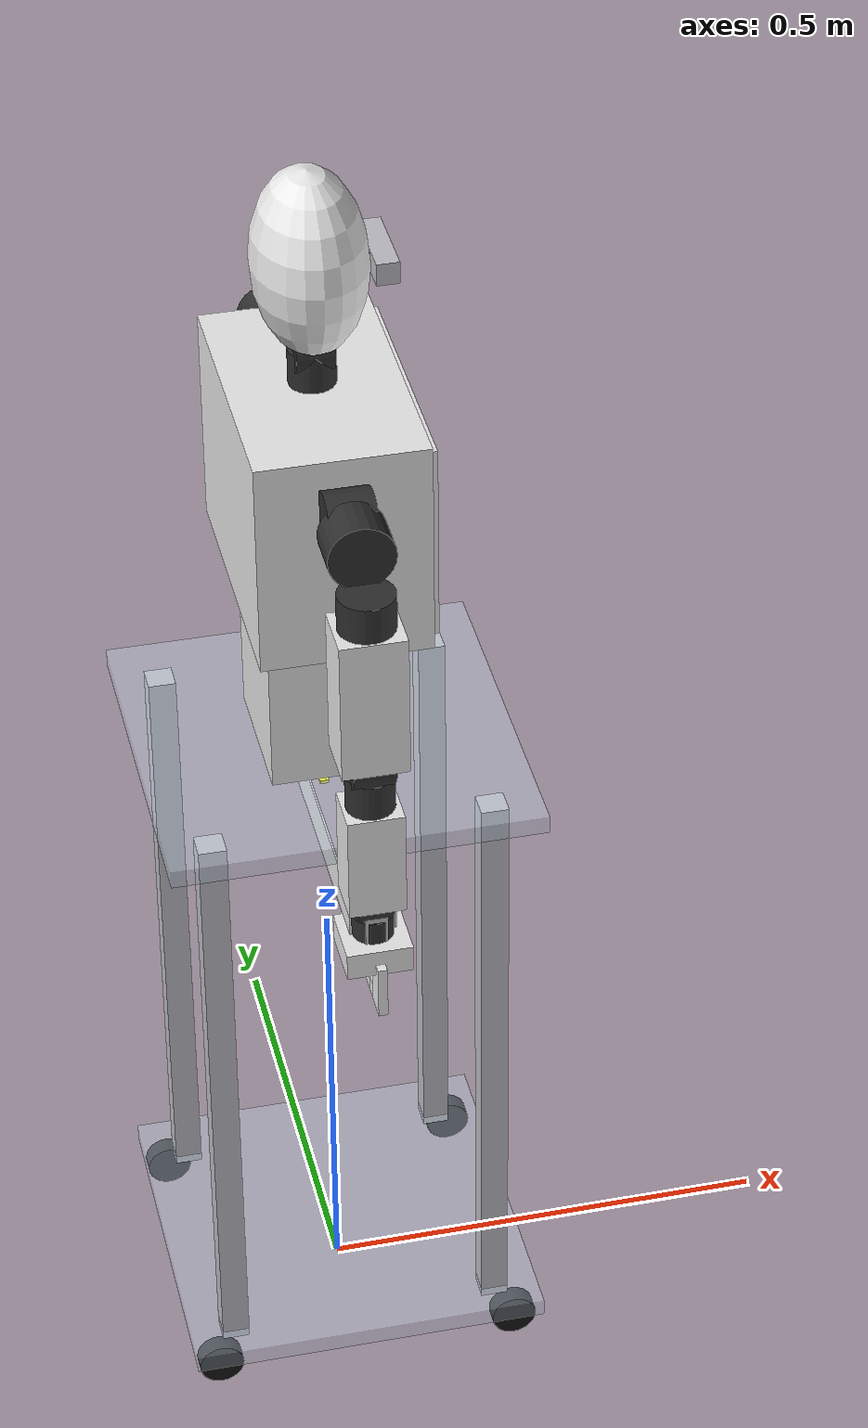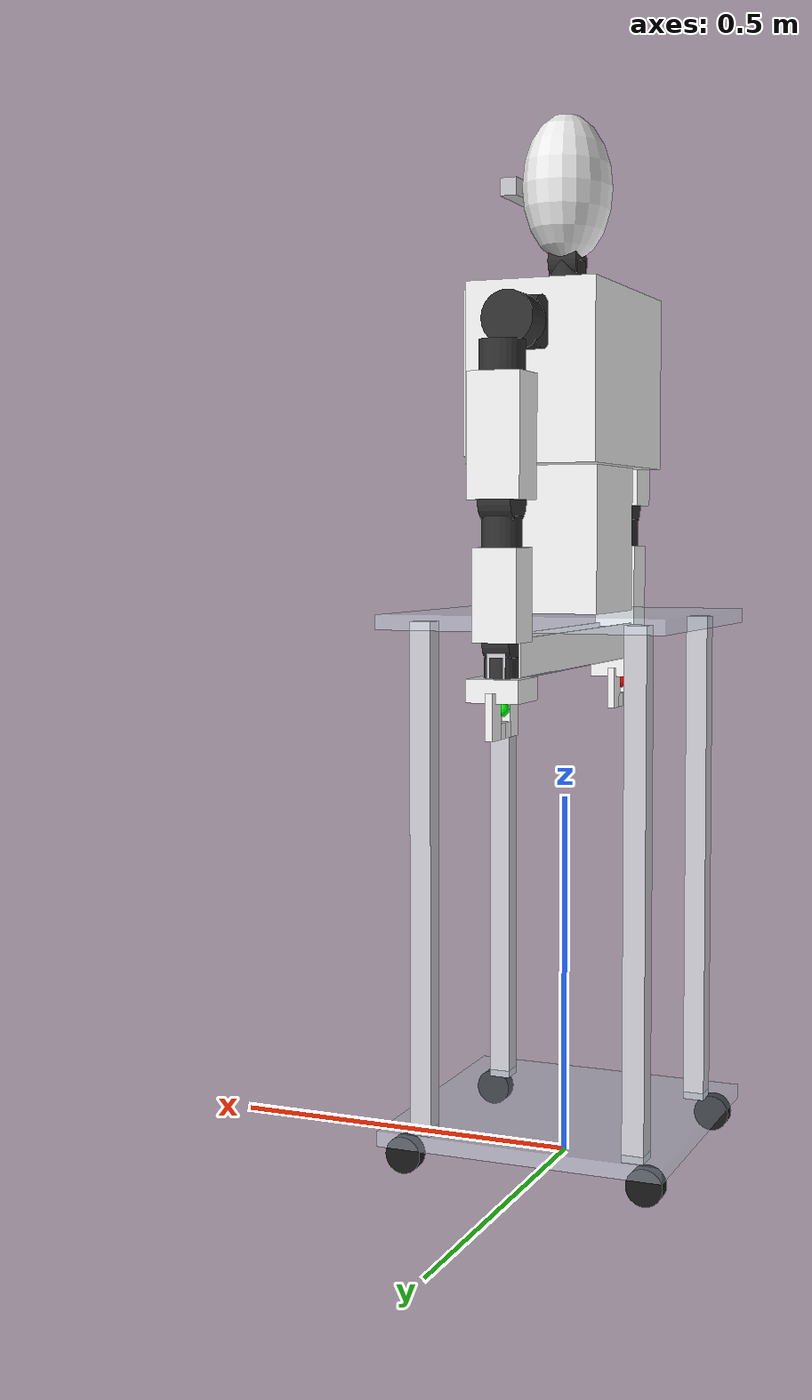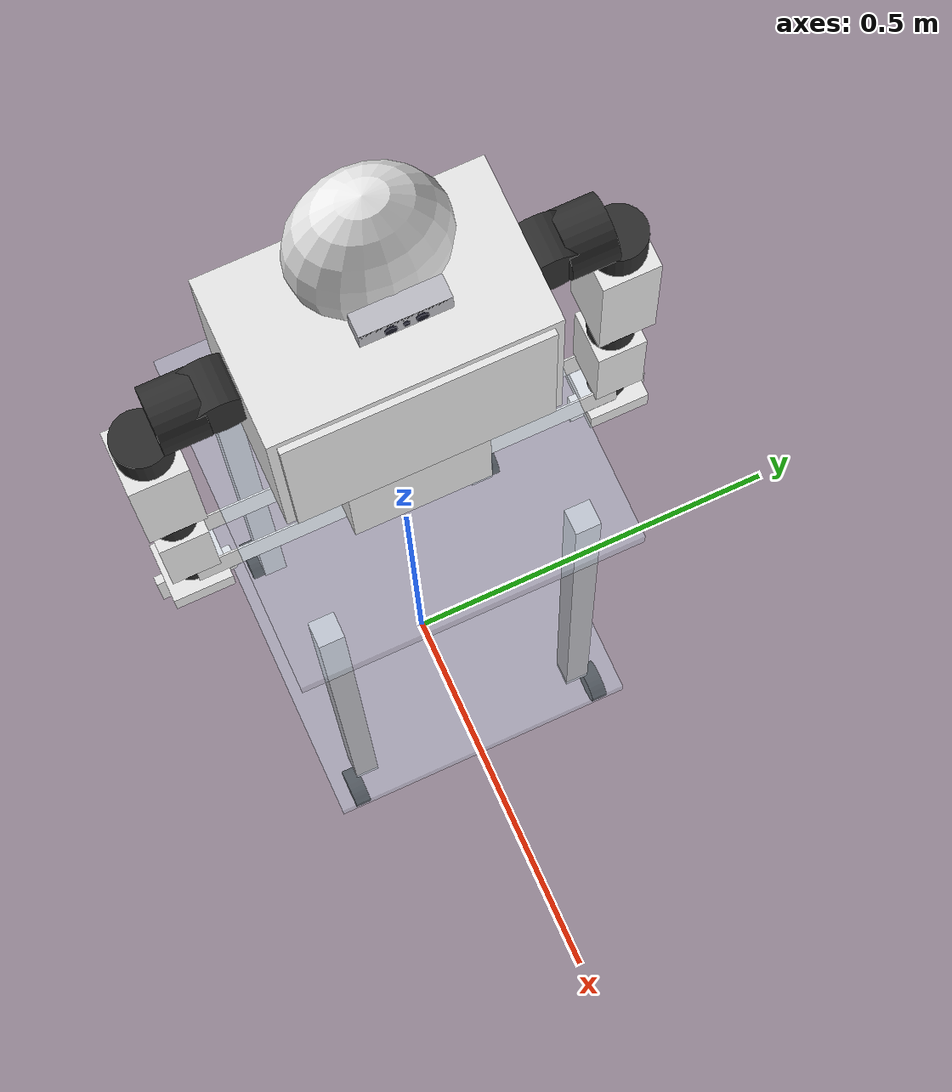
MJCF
<mujoco model="custom_humanoid_plate_scene">
  <include file="my_bot.xml"/>

  <statistic center="0 0 0.8" extent="1.5"/>

  <visual>
    <headlight diffuse="0.6 0.6 0.6" ambient="0.3 0.3 0.3" specular="0 0 0"/>
    <rgba haze="0.15 0.25 0.35 1"/>
    <global azimuth="140" elevation="-30"/>
  </visual>

  <asset>
    <!-- Floor Texture & Skybox -->
    <texture type="skybox" builtin="gradient" rgb1="0.3 0.5 0.7" rgb2="0.05 0.1 0.15" width="512" height="3072"/>
    <texture type="2d" name="groundplane" builtin="checker" mark="edge" rgb1="0.2 0.3 0.4" rgb2="0.1 0.2 0.3"
      markrgb="0.8 0.8 0.8" width="300" height="300"/>
    <material name="groundplane" texture="groundplane" texuniform="true" texrepeat="5 5" reflectance="0.2"/>
    <material name="ball_color" rgba="0.8 0.15 0.15 1" shininess="0.8" specular="0.8"/>
  </asset>

  <default>
    <default class="free_joint_class">
      <joint damping="0.0" armature="0.0" frictionloss="0.0"/>
    </default>
  </default>

  <worldbody>
    <!-- Soft environment lights -->
    <light pos="1.5 -1.0 3.0" dir="-1.5 1.0 -3.0" directional="true" castshadow="true"/>
    <light pos="-1.5 1.0 3.0" dir="1.5 -1.0 -3.0" directional="true" castshadow="false" diffuse="0.3 0.3 0.3"/>

    <!-- Floor Plane -->
    <geom name="floor" size="0 0 0.05" type="plane" material="groundplane" class="collision"/>

    <!-- PLATE ASSEMBLY (Aligned along Y-axis to bridge left & right arms)     -->
    <!-- Initial position aligns with robot wrists at 0.0 joint configuration:  -->
    <body name="plate_assembly" pos="0.0 0.0 0.695">
      <!-- Free Joint so plate can be moved by welded arms -->
      <joint name="plate_joint" type="free" class="free_joint_class"/>

      <!-- Center Marker visual -->
      <geom name="plate_center_marker" type="box" size="0.005 0.005 0.002" pos="0 0 0.001" rgba="1 1 0 1" contype="0" conaffinity="0" group="2"/>

      <!-- U-Channel Plate Bottom (Width: 5cm, Length: 50cm, Thickness: 2mm) -->
      <geom name="plate_bottom" type="box" size="0.025 0.25 0.001" pos="0 0 -0.01" material="acrylic_glass" friction="0.05 0.005 0.0001" contype="1" conaffinity="1" group="3"/>
      <geom name="plate_bottom_vis" type="box" size="0.025 0.25 0.001" pos="0 0 -0.01" material="acrylic_glass" contype="0" conaffinity="0" group="2"/>

      <!-- U-Channel Side Walls to keep the ball from rolling off sideways -->
      <geom name="plate_left_wall" type="box" size="0.001 0.25 0.025" pos="0.024 0 0.015" material="white_plastic" friction="0.05 0.005 0.0001" contype="1" conaffinity="1" group="3"/>
      <geom name="plate_left_wall_vis" type="box" size="0.001 0.25 0.025" pos="0.024 0 0.015" material="white_plastic" contype="0" conaffinity="0" group="2"/>

      <geom name="plate_right_wall" type="box" size="0.001 0.25 0.025" pos="-0.024 0 0.015" material="white_plastic" friction="0.05 0.005 0.0001" contype="1" conaffinity="1" group="3"/>
      <geom name="plate_right_wall_vis" type="box" size="0.001 0.25 0.025" pos="-0.024 0 0.015" material="white_plastic" contype="0" conaffinity="0" group="2"/>

      <!-- Plate End Caps to prevent the ball from falling off the ends -->
      <geom name="plate_front_cap" type="box" size="0.025 0.001 0.025" pos="0 0.25 0.015" material="white_plastic" friction="0.05 0.005 0.0001" contype="1" conaffinity="1" group="3"/>
      <geom name="plate_back_cap" type="box" size="0.025 0.001 0.025" pos="0 -0.25 0.015" material="white_plastic" friction="0.05 0.005 0.0001" contype="1" conaffinity="1" group="3"/>

      <!-- Left Coupler (Grasp Handle for the left gripper) -->
      <geom name="left_coupler" type="box" size="0.012 0.02 0.02" pos="0 0.25 0.01" material="metal_silver" contype="1" conaffinity="1" friction="1.0 0.005 0.0001" group="3"/>
      <geom name="left_coupler_vis" type="box" size="0.012 0.02 0.02" pos="0 0.25 0.01" material="metal_silver" contype="0" conaffinity="0" group="2"/>

      <!-- Right Coupler (Grasp Handle for the right gripper) -->
      <geom name="right_coupler" type="box" size="0.012 0.02 0.02" pos="0 -0.25 0.01" material="metal_silver" contype="1" conaffinity="1" friction="1.0 0.005 0.0001" group="3"/>
      <geom name="right_coupler_vis" type="box" size="0.012 0.02 0.02" pos="0 -0.25 0.01" material="metal_silver" contype="0" conaffinity="0" group="2"/>
    </body>

    <!-- BALL (Starts resting on the plate, offset by 5cm along Y channel)       -->
    <body name="ball" pos="0.0 0.05 0.715">
      <joint name="ball_joint" type="free" class="free_joint_class"/>
      <!-- Small red sphere (Diameter 3cm) -->
      <geom name="ball_collision" type="sphere" size="0.015" material="ball_color" density="2700" friction="0.02 0.005 0.0001" contype="1" conaffinity="1" group="3"/>
      <geom name="ball_vis" type="sphere" size="0.015" material="ball_color" contype="0" conaffinity="0" group="2"/>
    </body>
  </worldbody>

  <contact>
    <!-- Exclude collisions between arm wrist/gripper bodies and the plate assembly -->
    <!-- since we hold the plate via rigid weld equality constraints.             -->
    <exclude body1="l_wrist_yaw_link" body2="plate_assembly"/>
    <exclude body1="r_wrist_yaw_link" body2="plate_assembly"/>
    <exclude body1="l_gripper_l_finger" body2="plate_assembly"/>
    <exclude body1="l_gripper_r_finger" body2="plate_assembly"/>
    <exclude body1="r_gripper_l_finger" body2="plate_assembly"/>
    <exclude body1="r_gripper_r_finger" body2="plate_assembly"/>
  </contact>

  <equality>
    <!-- Weld constraints to dynamically and rigidly bind robot wrists to the plate. -->
    <!-- Stiffer solref="0.005 1" ensures the plate rigidly follows hand tilts without sagging. -->
    <weld name="left_hand_weld" body1="l_wrist_yaw_link" body2="plate_assembly" relpose="0 0.25 -0.07 0 1 0 0" solref="0.005 1" solimp="0.99 0.999 0.001 0.5 2"/>
    <weld name="right_hand_weld" body1="r_wrist_yaw_link" body2="plate_assembly" relpose="0 -0.25 -0.07 0 1 0 0" solref="0.005 1" solimp="0.99 0.999 0.001 0.5 2"/>
  </equality>
</mujoco>

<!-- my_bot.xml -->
<mujoco model="custom_humanoid">
  <compiler angle="radian" autolimits="true"/>

  <asset>
    <!-- Visual Materials -->
    <material name="white_plastic" rgba="0.92 0.92 0.92 1" shininess="0.3" specular="0.2"/>
    <material name="metal_silver" rgba="0.75 0.75 0.78 1" shininess="0.8" specular="0.7"/>
    <material name="motor_black" rgba="0.18 0.18 0.18 1" shininess="0.4" specular="0.3"/>
    <material name="acrylic_glass" rgba="0.85 0.92 1.0 0.35" shininess="0.9" specular="0.9"/>
    <material name="wheel_rubber" rgba="0.08 0.08 0.08 1" shininess="0.1" specular="0.1"/>
    <material name="face_screen" rgba="0.1 0.1 0.15 1" shininess="0.9" specular="0.9"/>
  </asset>

  <default>
    <!-- Actuator and Joint defaults for Dynamixel XM430/XH430 type servos -->
    <joint damping="1.5" armature="0.06" frictionloss="0.05"/>
    <position kp="45.0" forcerange="-10 10"/>

    <!-- Hierarchical Defaults to avoid duplicate classes -->
    <default class="visual">
      <geom contype="0" conaffinity="0" group="2"/>
      <default class="stand_part">
        <geom material="metal_silver"/>
      </default>
      <default class="white_shell_visual">
        <geom material="white_plastic"/>
      </default>
      <default class="motor_block">
        <geom material="motor_black" type="cylinder"/>
      </default>
    </default>

    <default class="collision">
      <geom group="3" condim="3" friction="1.0 0.005 0.0001"/>
      <default class="white_shell_collision">
        <geom material="white_plastic"/>
      </default>
    </default>
  </default>

  <worldbody>
    <!-- Base Mobile Stand (Fixed to world for stability, wheel spin is cosmetic/passive) -->
    <body name="stand_base" pos="0 0 0.05">
      <!-- Acrylic Bottom Plate -->
      <geom name="base_plate" type="box" size="0.2 0.2 0.01" material="acrylic_glass" class="collision"/>
      <geom type="box" size="0.2 0.2 0.01" material="acrylic_glass" class="visual"/>

      <!-- Cosmetic Caster Wheels -->
      <body name="wheel_fl" pos="0.17 0.17 -0.025">
        <geom type="cylinder" size="0.025 0.01" quat="0.7071 0.7071 0 0" material="wheel_rubber" class="visual"/>
      </body>
      <body name="wheel_fr" pos="0.17 -0.17 -0.025">
        <geom type="cylinder" size="0.025 0.01" quat="0.7071 0.7071 0 0" material="wheel_rubber" class="visual"/>
      </body>
      <body name="wheel_bl" pos="-0.17 0.17 -0.025">
        <geom type="cylinder" size="0.025 0.01" quat="0.7071 0.7071 0 0" material="wheel_rubber" class="visual"/>
      </body>
      <body name="wheel_br" pos="-0.17 -0.17 -0.025">
        <geom type="cylinder" size="0.025 0.01" quat="0.7071 0.7071 0 0" material="wheel_rubber" class="visual"/>
      </body>

      <!-- Aluminum Profile Extrusions (Vertical Frame) -->
      <geom class="stand_part" type="box" size="0.015 0.015 0.35" pos="0.15 0.15 0.35"/>
      <geom class="stand_part" type="box" size="0.015 0.015 0.35" pos="0.15 -0.15 0.35"/>
      <geom class="stand_part" type="box" size="0.015 0.015 0.35" pos="-0.15 0.15 0.35"/>
      <geom class="stand_part" type="box" size="0.015 0.015 0.35" pos="-0.15 -0.15 0.35"/>

      <!-- Acrylic Top Plate -->
      <geom type="box" size="0.2 0.2 0.01" pos="0 0 0.7" material="acrylic_glass" class="collision"/>
      <geom type="box" size="0.2 0.2 0.01" pos="0 0 0.7" material="acrylic_glass" class="visual"/>

      <!-- ==================== ROBOT BODY START ==================== -->
      <body name="torso" pos="0 0 0.71">
        <!-- Lower Trapezoidal Torso Section -->
        <geom class="white_shell_collision" type="box" size="0.07 0.08 0.1" pos="0 0 0.1"/>
        <geom class="white_shell_visual" type="box" size="0.07 0.08 0.1" pos="0 0 0.1"/>

        <!-- Upper Chest Section -->
        <geom class="white_shell_collision" type="box" size="0.09 0.15 0.12" pos="0 0 0.32"/>
        <geom class="white_shell_visual" type="box" size="0.09 0.15 0.12" pos="0 0 0.32"/>
        <!-- Chest Front Cover plate detail -->
        <geom class="white_shell_visual" type="box" size="0.005 0.14 0.11" pos="0.092 0 0.32"/>

        <!-- ==================== HEAD (2 DOF) ==================== -->
        <body name="head_yaw_link" pos="0 0 0.44">
          <joint name="head_yaw" type="hinge" axis="0 0 1" range="-1.57 1.57"/>
          <geom class="motor_block" size="0.025 0.02" pos="0 0 0.02"/>

          <body name="head_tilt_link" pos="0 0 0.04">
            <joint name="head_tilt" type="hinge" axis="0 1 0" range="-0.8 0.8"/>
            <geom class="motor_block" size="0.025 0.02" quat="0.7071 0 0.7071 0" pos="0 0 0"/>

            <!-- Oval Head Shell -->
            <geom class="white_shell_collision" type="ellipsoid" size="0.06 0.08 0.1" pos="0 0 0.1"/>
            <geom class="white_shell_visual" type="ellipsoid" size="0.06 0.08 0.1" pos="0 0 0.1"/>

            <!-- RealSense-Style Depth Camera Assembly -->
            <!-- Camera Mount Bracket -->
            <geom type="box" size="0.005 0.015 0.008" pos="0.055 0 0.1" material="motor_black" class="visual"/>
            <!-- Camera Outer Casing (Silver Bezel) -->
            <geom type="box" size="0.012 0.045 0.012" pos="0.07 0 0.1" material="metal_silver" class="visual"/>
            <geom type="box" size="0.011 0.044 0.011" pos="0.071 0 0.1" material="motor_black" class="visual"/>
            <!-- Left Depth Sensor Lens -->
            <geom type="cylinder" size="0.006 0.002" pos="0.082 0.015 0.1" quat="0.7071 0 0.7071 0" material="face_screen" class="visual"/>
            <!-- Right Depth Sensor Lens -->
            <geom type="cylinder" size="0.006 0.002" pos="0.082 -0.015 0.1" quat="0.7071 0 0.7071 0" material="face_screen" class="visual"/>
            <!-- Central RGB Camera Lens -->
            <geom type="cylinder" size="0.003 0.002" pos="0.082 0 0.1" quat="0.7071 0 0.7071 0" material="face_screen" class="visual"/>

            <!-- Depth Camera Sensor (points forward along +X with +Z pointing up) -->
            <camera name="head_camera" pos="0.082 0 0.1" xyaxes="0 -1 0 0 0 1" fovy="60"/>
          </body>
        </body>

        <!-- ==================== LEFT ARM (7 DOF + Gripper) ==================== -->
        <!-- Shoulder Pitch (J1) -->
        <body name="l_sho_pitch_link" pos="0 0.17 0.38">
          <joint name="l_sho_pitch" type="hinge" axis="0 1 0" range="-2.5 2.5"/>
          <geom class="motor_block" size="0.035 0.025" quat="0.7071 0 0.7071 0" pos="0 0 0"/>

          <!-- Shoulder Roll (J2) -->
          <body name="l_sho_roll_link" pos="0 0.04 0">
            <joint name="l_sho_roll" type="hinge" axis="1 0 0" range="-0.2 2.0"/>
            <geom class="motor_block" size="0.035 0.025" quat="0.7071 0.7071 0 0" pos="0 0 0"/>

            <!-- Shoulder Yaw (J3) -->
            <body name="l_sho_yaw_link" pos="0 0.04 -0.05">
              <joint name="l_sho_yaw" type="hinge" axis="0 0 1" range="-1.57 1.57"/>
              <geom class="motor_block" size="0.03 0.02" pos="0 0 0"/>

              <!-- Upper Arm Link (Boxy, matching photos) -->
              <geom class="white_shell_collision" type="box" size="0.035 0.032 0.08" pos="0 0 -0.1"/>
              <geom class="white_shell_visual" type="box" size="0.035 0.032 0.08" pos="0 0 -0.1"/>

              <!-- Elbow Pitch (J4) -->
              <body name="l_el_pitch_link" pos="0 0 -0.18">
                <joint name="l_el_pitch" type="hinge" axis="0 1 0" range="-2.0 0.1"/>
                <geom class="motor_block" size="0.03 0.022" quat="0.7071 0 0.7071 0" pos="0 0 0"/>

                <!-- Forearm Yaw (J5) -->
                <body name="l_forearm_yaw_link" pos="0 0 -0.04">
                  <joint name="l_forearm_yaw" type="hinge" axis="0 0 1" range="-3.14 3.14"/>
                  <geom class="motor_block" size="0.026 0.02" pos="0 0 0"/>

                  <!-- Forearm Link (Boxy, matching photos) -->
                  <geom class="white_shell_collision" type="box" size="0.03 0.028 0.06" pos="0 0 -0.08"/>
                  <geom class="white_shell_visual" type="box" size="0.03 0.028 0.06" pos="0 0 -0.08"/>

                  <!-- Wrist Pitch (J6) -->
                  <body name="l_wrist_pitch_link" pos="0 0 -0.14">
                    <joint name="l_wrist_pitch" type="hinge" axis="0 1 0" range="-3.14 3.14"/>
                    <geom class="motor_block" size="0.024 0.018" quat="0.7071 0 0.7071 0" pos="0 0 0"/>

                    <!-- Wrist Yaw (J7 - Pitch rotated by 90 degrees) -->
                    <body name="l_wrist_yaw_link" pos="0 0 -0.035">
                      <joint name="l_wrist_yaw" type="hinge" axis="1 0 0" range="-3.14 3.14"/>
                      <geom class="motor_block" size="0.022 0.016" pos="0 0 0"/>

                      <!-- Gripper Base Box -->
                      <geom class="white_shell_collision" type="box" size="0.035 0.035 0.015" pos="0 0 -0.025"/>
                      <geom class="white_shell_visual" type="box" size="0.035 0.035 0.015" pos="0 0 -0.025"/>

                      <!-- End-effector tracking site -->
                      <site name="l_eef" pos="0 0 -0.05" size="0.01" rgba="0 1 0 1"/>

                      <!-- 1-DOF Angular Gripper (Revolute pivot fingers in Y-axis) -->
                      <body name="l_gripper_l_finger" pos="0 0.02 -0.032">
                        <joint name="l_finger_l_joint" type="hinge" axis="0 0 1" range="0 0.8"/>
                        <geom class="white_shell_collision" type="box" size="0.006 0.015 0.03" pos="0 0.01 -0.025"/>
                        <!-- Visual details showing the claw curvature -->
                        <geom class="white_shell_visual" type="box" size="0.005 0.015 0.03" pos="0 0.01 -0.025"/>
                        <geom class="white_shell_visual" type="box" size="0.005 0.01 0.01" pos="0 -0.01 -0.045"/>
                      </body>
                      <body name="l_gripper_r_finger" pos="0 -0.02 -0.032">
                        <joint name="l_finger_r_joint" type="hinge" axis="0 0 -1" range="0 0.8"/>
                        <geom class="white_shell_collision" type="box" size="0.006 0.015 0.03" pos="0 -0.01 -0.025"/>
                        <geom class="white_shell_visual" type="box" size="0.005 0.015 0.03" pos="0 -0.01 -0.025"/>
                        <geom class="white_shell_visual" type="box" size="0.005 0.01 0.01" pos="0 0.01 -0.045"/>
                      </body>
                    </body>
                  </body>
                </body>
              </body>
            </body>
          </body>
        </body>

        <!-- ==================== RIGHT ARM (7 DOF + Gripper) ==================== -->
        <!-- Shoulder Pitch (J1 - Mirrored Y-axis) -->
        <body name="r_sho_pitch_link" pos="0 -0.17 0.38">
          <joint name="r_sho_pitch" type="hinge" axis="0 -1 0" range="-2.5 2.5"/>
          <geom class="motor_block" size="0.035 0.025" quat="0.7071 0 0.7071 0" pos="0 0 0"/>

          <!-- Shoulder Roll (J2 - Mirrored X-axis) -->
          <body name="r_sho_roll_link" pos="0 -0.04 0">
            <joint name="r_sho_roll" type="hinge" axis="-1 0 0" range="-2.0 2.0"/>
            <geom class="motor_block" size="0.035 0.025" quat="0.7071 -0.7071 0 0" pos="0 0 0"/>

            <!-- Shoulder Yaw (J3 - Mirrored Z-axis) -->
            <body name="r_sho_yaw_link" pos="0 -0.04 -0.05">
              <joint name="r_sho_yaw" type="hinge" axis="0 0 -1" range="-1.57 1.57"/>
              <geom class="motor_block" size="0.03 0.02" pos="0 0 0"/>

              <!-- Upper Arm Link (Boxy, matching photos) -->
              <geom class="white_shell_collision" type="box" size="0.035 0.032 0.08" pos="0 0 -0.1"/>
              <geom class="white_shell_visual" type="box" size="0.035 0.032 0.08" pos="0 0 -0.1"/>

              <!-- Elbow Pitch (J4 - Mirrored Y-axis) -->
              <body name="r_el_pitch_link" pos="0 0 -0.18">
                <joint name="r_el_pitch" type="hinge" axis="0 -1 0" range="-0.1 2.0"/>
                <geom class="motor_block" size="0.03 0.022" quat="0.7071 0 0.7071 0" pos="0 0 0"/>

                <!-- Forearm Yaw (J5 - Mirrored Z-axis) -->
                <body name="r_forearm_yaw_link" pos="0 0 -0.04">
                  <joint name="r_forearm_yaw" type="hinge" axis="0 0 -1" range="-3.14 3.14"/>
                  <geom class="motor_block" size="0.026 0.02" pos="0 0 0"/>

                  <!-- Forearm Link (Boxy, matching photos) -->
                  <geom class="white_shell_collision" type="box" size="0.03 0.028 0.06" pos="0 0 -0.08"/>
                  <geom class="white_shell_visual" type="box" size="0.03 0.028 0.06" pos="0 0 -0.08"/>

                  <!-- Wrist Pitch (J6 - Mirrored Y-axis) -->
                  <body name="r_wrist_pitch_link" pos="0 0 -0.14">
                    <joint name="r_wrist_pitch" type="hinge" axis="0 -1 0" range="-3.14 3.14"/>
                    <geom class="motor_block" size="0.024 0.018" quat="0.7071 0 0.7071 0" pos="0 0 0"/>

                    <!-- Wrist Yaw (J7 - Mirrored X-axis) -->
                    <body name="r_wrist_yaw_link" pos="0 0 -0.035">
                      <joint name="r_wrist_yaw" type="hinge" axis="-1 0 0" range="-3.14 3.14"/>
                      <geom class="motor_block" size="0.022 0.016" pos="0 0 0"/>

                      <!-- Gripper Base Box -->
                      <geom class="white_shell_collision" type="box" size="0.035 0.035 0.015" pos="0 0 -0.025"/>
                      <geom class="white_shell_visual" type="box" size="0.035 0.035 0.015" pos="0 0 -0.025"/>

                      <!-- End-effector tracking site -->
                      <site name="r_eef" pos="0 0 -0.05" size="0.01" rgba="1 0 0 1"/>

                      <!-- 1-DOF Angular Gripper (Revolute pivot fingers in Y-axis) -->
                      <body name="r_gripper_l_finger" pos="0 0.02 -0.032">
                        <joint name="r_finger_l_joint" type="hinge" axis="0 0 1" range="0 0.8"/>
                        <geom class="white_shell_collision" type="box" size="0.006 0.015 0.03" pos="0 0.01 -0.025"/>
                        <geom class="white_shell_visual" type="box" size="0.005 0.015 0.03" pos="0 0.01 -0.025"/>
                        <geom class="white_shell_visual" type="box" size="0.005 0.01 0.01" pos="0 -0.01 -0.045"/>
                      </body>
                      <body name="r_gripper_r_finger" pos="0 -0.02 -0.032">
                        <joint name="r_finger_r_joint" type="hinge" axis="0 0 -1" range="0 0.8"/>
                        <geom class="white_shell_collision" type="box" size="0.006 0.015 0.03" pos="0 -0.01 -0.025"/>
                        <geom class="white_shell_visual" type="box" size="0.005 0.015 0.03" pos="0 -0.01 -0.025"/>
                        <geom class="white_shell_visual" type="box" size="0.005 0.01 0.01" pos="0 0.01 -0.045"/>
                      </body>
                    </body>
                  </body>
                </body>
              </body>
            </body>
          </body>
        </body>
      </body>
    </body>
  </worldbody>

  <!-- Actuators (Position Control for all 18 joints) -->
  <actuator>
    <!-- Head (2 DOF) -->
    <position name="head_yaw_act" joint="head_yaw" ctrlrange="-1.57 1.57"/>
    <position name="head_tilt_act" joint="head_tilt" ctrlrange="-0.8 0.8"/>

    <!-- Left Arm (7 DOF - Torque Motors) -->
    <motor name="l_sho_pitch_act" joint="l_sho_pitch" ctrlrange="-1000 1000"/>
    <motor name="l_sho_roll_act" joint="l_sho_roll" ctrlrange="-1000 1000"/>
    <motor name="l_sho_yaw_act" joint="l_sho_yaw" ctrlrange="-1000 1000"/>
    <motor name="l_el_pitch_act" joint="l_el_pitch" ctrlrange="-1000 1000"/>
    <motor name="l_forearm_yaw_act" joint="l_forearm_yaw" ctrlrange="-1000 1000"/>
    <motor name="l_wrist_pitch_act" joint="l_wrist_pitch" ctrlrange="-1000 1000"/>
    <motor name="l_wrist_yaw_act" joint="l_wrist_yaw" ctrlrange="-1000 1000"/>
    <!-- Left Gripper (Driven together, range 0 to 0.8 rad) -->
    <position name="l_gripper_l_act" joint="l_finger_l_joint" ctrlrange="0 0.8" kp="80.0" forcerange="-5 5"/>
    <position name="l_gripper_r_act" joint="l_finger_r_joint" ctrlrange="0 0.8" kp="80.0" forcerange="-5 5"/>

    <!-- Right Arm (7 DOF - Torque Motors) -->
    <motor name="r_sho_pitch_act" joint="r_sho_pitch" ctrlrange="-1000 1000"/>
    <motor name="r_sho_roll_act" joint="r_sho_roll" ctrlrange="-1000 1000"/>
    <motor name="r_sho_yaw_act" joint="r_sho_yaw" ctrlrange="-1000 1000"/>
    <motor name="r_el_pitch_act" joint="r_el_pitch" ctrlrange="-1000 1000"/>
    <motor name="r_forearm_yaw_act" joint="r_forearm_yaw" ctrlrange="-1000 1000"/>
    <motor name="r_wrist_pitch_act" joint="r_wrist_pitch" ctrlrange="-1000 1000"/>
    <motor name="r_wrist_yaw_act" joint="r_wrist_yaw" ctrlrange="-1000 1000"/>
    <!-- Right Gripper (Driven together, range 0 to 0.8 rad) -->
    <position name="r_gripper_l_act" joint="r_finger_l_joint" ctrlrange="0 0.8" kp="80.0" forcerange="-5 5"/>
    <position name="r_gripper_r_act" joint="r_finger_r_joint" ctrlrange="0 0.8" kp="80.0" forcerange="-5 5"/>
  </actuator>
</mujoco>
